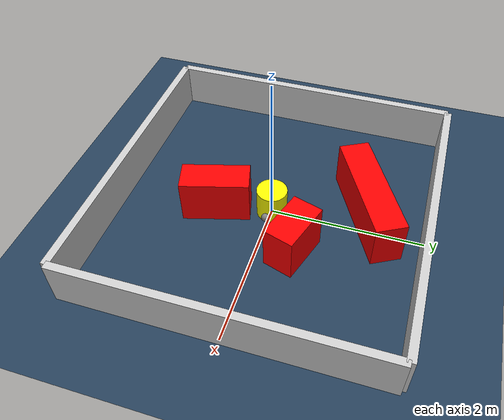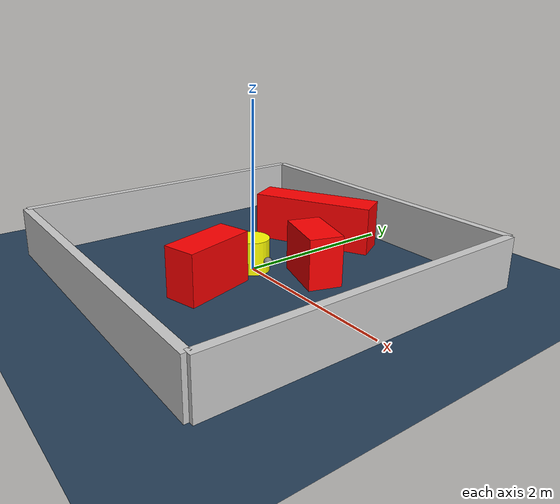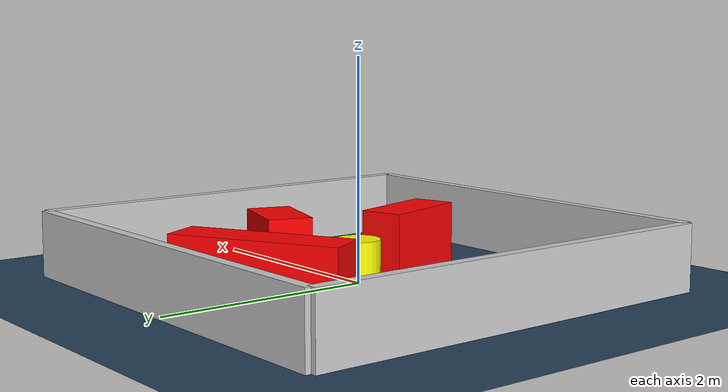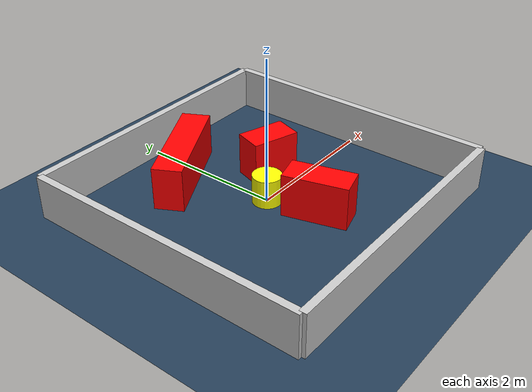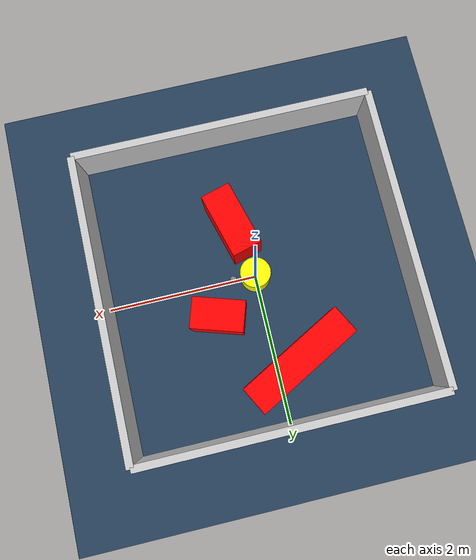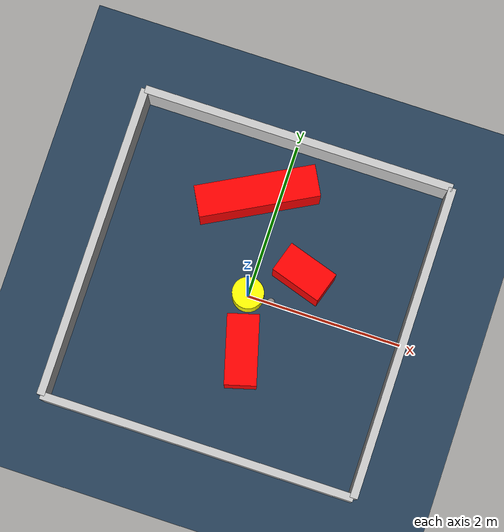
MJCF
<?xml version="1.0" ?>
<mujoco model="generated_environment">
  <option timestep="0.01" integrator="RK4" cone="elliptic"/>
  <default>
    <geom density="1"/>
  </default>
  <asset>
    <texture builtin="gradient" height="3072" rgb1="0.3 0.5 0.7" rgb2="0 0 0" type="skybox" width="512"/>
    <texture builtin="checker" height="300" mark="edge" markrgb="0.8 0.8 0.8" name="groundplane" rgb1="0.2 0.3 0.4" rgb2="0.1 0.2 0.3" type="2d" width="300"/>
    <material name="groundplane" reflectance="0.2" texrepeat="5 5" texture="groundplane" texuniform="true"/>
    <material name="robot" rgba="0.0 1.0 0.0 1"/>
  </asset>
  <worldbody>
    <light dir="0 0 -1" directional="true" pos="0 0 1.5"/>
    <geom condim="4" friction="1.0 0.005 0.001" material="groundplane" name="floor" size="0 0 0.05" type="plane"/>
    <body name="walls">
      <geom name="wall_1" condim="4" pos="-2.0 0.0 0.3" rgba="0.800000011920929 0.800000011920929 0.800000011920929 1.0" size="0.05 2.0 0.3" type="box"/>
      <geom name="wall_2" condim="4" pos="2.0 0.0 0.3" rgba="0.800000011920929 0.800000011920929 0.800000011920929 1.0" size="0.05 2.0 0.3" type="box"/>
      <geom name="wall_3" condim="4" pos="0.0 -2.0 0.3" rgba="0.800000011920929 0.800000011920929 0.800000011920929 1.0" size="2.0 0.05 0.3" type="box"/>
      <geom name="wall_4" condim="4" pos="0.0 2.0 0.3" rgba="0.800000011920929 0.800000011920929 0.800000011920929 1.0" size="2.0 0.05 0.3" type="box"/>
    </body>
    <body name="robot">
      <joint name="joint_x" type="slide" pos="0 0 0" axis="1 0 0"/>
      <joint name="joint_y" type="slide" pos="0 0 0" axis="0 1 0"/>
      <geom name="robot" type="sphere" pos="0.3 0.0 0.2" size="0.05" mass="5." friction="1.0 0.005 0.0001" condim="4" rgba="0.5 0.5 0.5 1.0"/>
      <site name="sensor_ball"/>
    </body>
    <body name="obstacle_movable_1">
      <geom name="obstacle_movable_1" condim="4" pos="0.0 0.0 0.2" euler="0 0 0.0" friction="1.0 0.005 0.001" rgba="1.0 1.0 0.0 1.0" size="0.2 0.2 0.0" type="cylinder" mass="0.1"/>
      <joint type="free"/>
    </body>
    <body name="obstacle_2_static">
      <geom name="obstacle_2_static" condim="4" pos="0.5856873161306144 0.43814808066059174 0.3" euler="0 0 162.4001216546229" friction="1.0 0.005 0.001" rgba="1 0 0 1" size="0.3368086124745033 0.2 0.3" type="box"/>
    </body>
    <body name="obstacle_3_static">
      <geom name="obstacle_3_static" condim="4" pos="-0.2801024602753308 1.2166836218318438 0.3" euler="0 0 28.24385875557027" friction="1.0 0.005 0.001" rgba="1 0 0 1" size="0.761077321391735 0.2 0.3" type="box"/>
    </body>
    <body name="obstacle_4_static">
      <geom name="obstacle_4_static" condim="4" pos="0.15303379914123894 -0.7080739455141829 0.3" euler="0 0 285.5798186798459" friction="1.0 0.005 0.001" rgba="1 0 0 1" size="0.4395180727555099 0.2 0.3" type="box"/>
    </body>
  </worldbody>
  <actuator>
    <motor name="actuator_x" joint="joint_x" gear="1" ctrlrange="-1 1"/>
    <motor name="actuator_y" joint="joint_y" gear="1" ctrlrange="-1 1"/>
  </actuator>
</mujoco>
